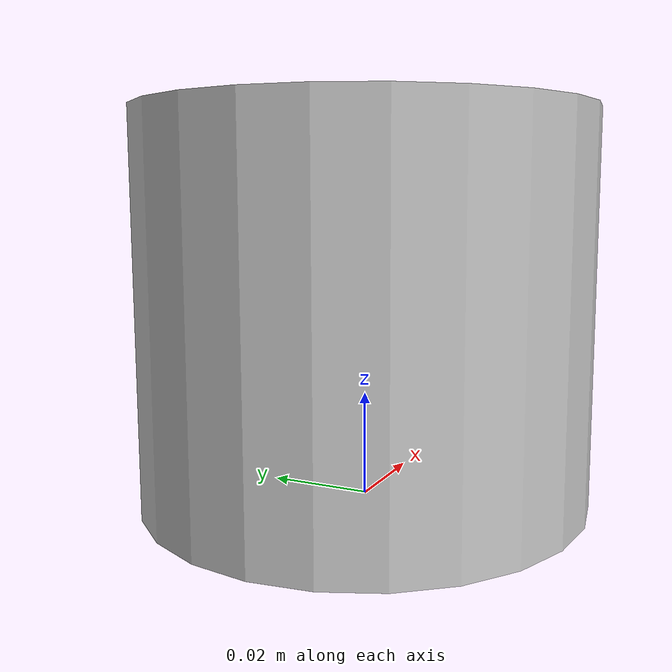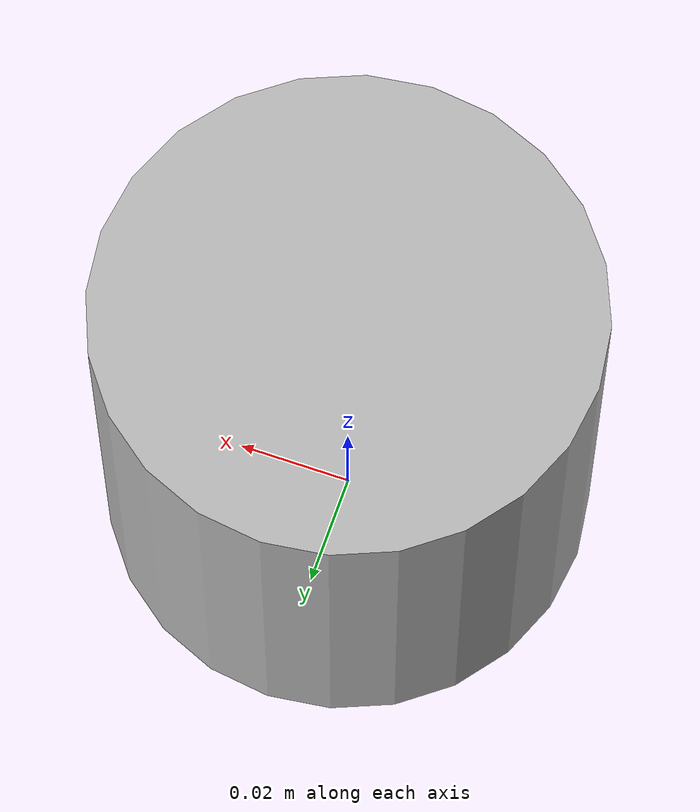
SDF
<?xml version="1.0" ?>
<sdf version="1.5">
  <plugin
      filename="ignition-gazebo-sensors-system"
      name="ignition::gazebo::systems::Sensors">
      <render_engine>ogre2</render_engine>
    </plugin>

  <model name="radar">

    <link name="top">
      <pose>0 0 0.036785 0 0 0</pose>
      <inertial>
        <mass>0.1</mass>
        <inertia>
          <ixx>0.000090623</ixx>
          <iyy>0.000090623</iyy>
          <izz>0.000091036</izz>
          <ixy>0</ixy>
          <ixz>0</ixz>
          <iyz>0</iyz>
        </inertia>
      </inertial>
      <collision name="top_collision">
        <geometry>
          <cylinder>
            <radius>0.04267</radius>
            <length>0.07357</length>
          </cylinder>
        </geometry>
      </collision>
      <visual name="top_visual">
        <geometry>
          <cylinder>
            <radius>0.04267</radius>
            <length>0.07357</length>
          </cylinder>
        </geometry>
      </visual>
      <sensor name='gpu_radar' type='gpu_radar'>
          <topic>radar</topic>
          <pose>0 0 0.029335 0 0 0</pose>
          <update_rate>10</update_rate>
          <radar>
            <noise>
              <type>gaussian</type>
              <mean>0.0</mean>
              <stddev>0.05</stddev>
            </noise>
            <scan>
                <horizontal>
                <samples>32</samples>
                <resolution>1</resolution>
                <min_angle>-3.14159</min_angle>
                <max_angle>3.14159</max_angle>
              </horizontal>
              <vertical>
                <samples>1</samples>
                <resolution>1</resolution>
                <min_angle>0</min_angle>
                <max_angle>0</max_angle>
              </vertical>
            </scan>
            <range>
              <min>0.2</min>
              <max>20.0</max>
              <resolution>0.01</resolution>
            </range>
          </radar>
          <alwaysOn>1</alwaysOn>
          <visualize>true</visualize>
        </sensor>
    </link>
  </model>
</sdf>
